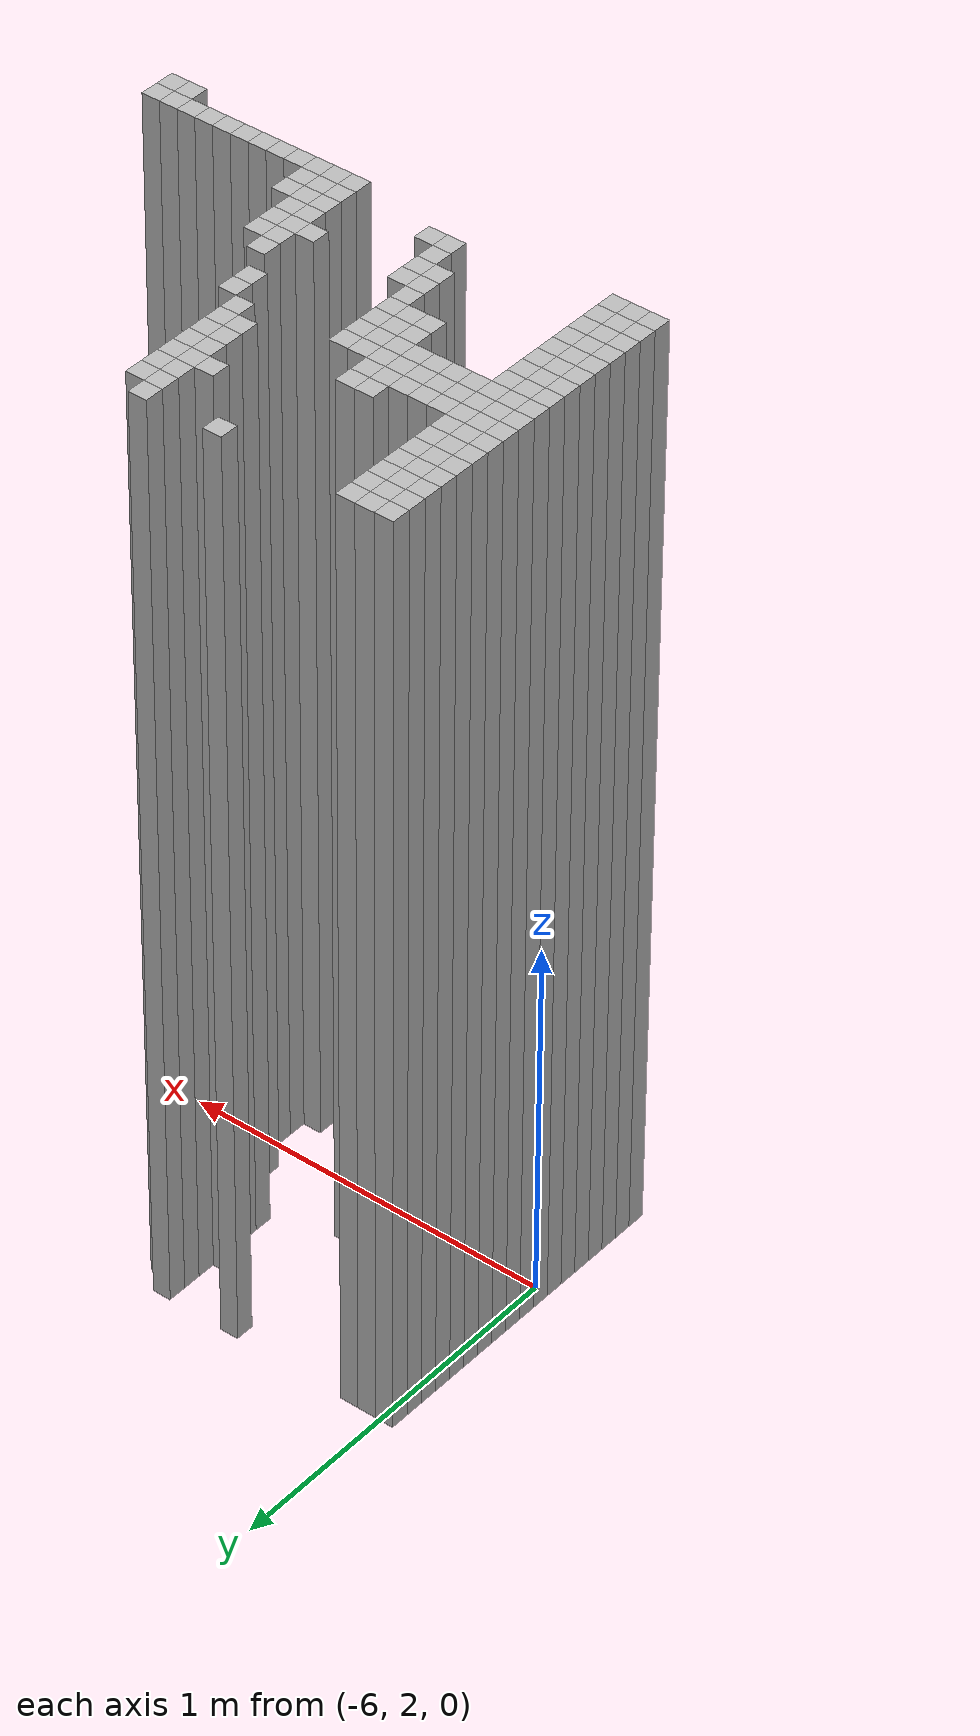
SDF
<sdf version="1.9">
 <world name="map_world">
  <model name="wall_103_103">
   <static>true</static>
   <pose>-6.011 2.530 1.250 0 0 0</pose>
   <link name="link">
    <collision name="collision"><geometry><box><size>0.050 0.050 2.500</size></box></geometry></collision>
    <visual name="visual"><geometry><box><size>0.050 0.050 2.500</size></box></geometry></visual>
   </link>
  </model>
  <model name="wall_104_103">
   <static>true</static>
   <pose>-5.961 2.530 1.250 0 0 0</pose>
   <link name="link">
    <collision name="collision"><geometry><box><size>0.050 0.050 2.500</size></box></geometry></collision>
    <visual name="visual"><geometry><box><size>0.050 0.050 2.500</size></box></geometry></visual>
   </link>
  </model>
  <model name="wall_105_103">
   <static>true</static>
   <pose>-5.911 2.530 1.250 0 0 0</pose>
   <link name="link">
    <collision name="collision"><geometry><box><size>0.050 0.050 2.500</size></box></geometry></collision>
    <visual name="visual"><geometry><box><size>0.050 0.050 2.500</size></box></geometry></visual>
   </link>
  </model>
  <model name="wall_112_103">
   <static>true</static>
   <pose>-5.561 2.530 1.250 0 0 0</pose>
   <link name="link">
    <collision name="collision"><geometry><box><size>0.050 0.050 2.500</size></box></geometry></collision>
    <visual name="visual"><geometry><box><size>0.050 0.050 2.500</size></box></geometry></visual>
   </link>
  </model>
  <model name="wall_116_103">
   <static>true</static>
   <pose>-5.361 2.530 1.250 0 0 0</pose>
   <link name="link">
    <collision name="collision"><geometry><box><size>0.050 0.050 2.500</size></box></geometry></collision>
    <visual name="visual"><geometry><box><size>0.050 0.050 2.500</size></box></geometry></visual>
   </link>
  </model>
  <model name="wall_103_104">
   <static>true</static>
   <pose>-6.011 2.480 1.250 0 0 0</pose>
   <link name="link">
    <collision name="collision"><geometry><box><size>0.050 0.050 2.500</size></box></geometry></collision>
    <visual name="visual"><geometry><box><size>0.050 0.050 2.500</size></box></geometry></visual>
   </link>
  </model>
  <model name="wall_104_104">
   <static>true</static>
   <pose>-5.961 2.480 1.250 0 0 0</pose>
   <link name="link">
    <collision name="collision"><geometry><box><size>0.050 0.050 2.500</size></box></geometry></collision>
    <visual name="visual"><geometry><box><size>0.050 0.050 2.500</size></box></geometry></visual>
   </link>
  </model>
  <model name="wall_105_104">
   <static>true</static>
   <pose>-5.911 2.480 1.250 0 0 0</pose>
   <link name="link">
    <collision name="collision"><geometry><box><size>0.050 0.050 2.500</size></box></geometry></collision>
    <visual name="visual"><geometry><box><size>0.050 0.050 2.500</size></box></geometry></visual>
   </link>
  </model>
  <model name="wall_116_104">
   <static>true</static>
   <pose>-5.361 2.480 1.250 0 0 0</pose>
   <link name="link">
    <collision name="collision"><geometry><box><size>0.050 0.050 2.500</size></box></geometry></collision>
    <visual name="visual"><geometry><box><size>0.050 0.050 2.500</size></box></geometry></visual>
   </link>
  </model>
  <model name="wall_117_104">
   <static>true</static>
   <pose>-5.311 2.480 1.250 0 0 0</pose>
   <link name="link">
    <collision name="collision"><geometry><box><size>0.050 0.050 2.500</size></box></geometry></collision>
    <visual name="visual"><geometry><box><size>0.050 0.050 2.500</size></box></geometry></visual>
   </link>
  </model>
  <model name="wall_103_105">
   <static>true</static>
   <pose>-6.011 2.430 1.250 0 0 0</pose>
   <link name="link">
    <collision name="collision"><geometry><box><size>0.050 0.050 2.500</size></box></geometry></collision>
    <visual name="visual"><geometry><box><size>0.050 0.050 2.500</size></box></geometry></visual>
   </link>
  </model>
  <model name="wall_104_105">
   <static>true</static>
   <pose>-5.961 2.430 1.250 0 0 0</pose>
   <link name="link">
    <collision name="collision"><geometry><box><size>0.050 0.050 2.500</size></box></geometry></collision>
    <visual name="visual"><geometry><box><size>0.050 0.050 2.500</size></box></geometry></visual>
   </link>
  </model>
  <model name="wall_105_105">
   <static>true</static>
   <pose>-5.911 2.430 1.250 0 0 0</pose>
   <link name="link">
    <collision name="collision"><geometry><box><size>0.050 0.050 2.500</size></box></geometry></collision>
    <visual name="visual"><geometry><box><size>0.050 0.050 2.500</size></box></geometry></visual>
   </link>
  </model>
  <model name="wall_116_105">
   <static>true</static>
   <pose>-5.361 2.430 1.250 0 0 0</pose>
   <link name="link">
    <collision name="collision"><geometry><box><size>0.050 0.050 2.500</size></box></geometry></collision>
    <visual name="visual"><geometry><box><size>0.050 0.050 2.500</size></box></geometry></visual>
   </link>
  </model>
  <model name="wall_117_105">
   <static>true</static>
   <pose>-5.311 2.430 1.250 0 0 0</pose>
   <link name="link">
    <collision name="collision"><geometry><box><size>0.050 0.050 2.500</size></box></geometry></collision>
    <visual name="visual"><geometry><box><size>0.050 0.050 2.500</size></box></geometry></visual>
   </link>
  </model>
  <model name="wall_103_106">
   <static>true</static>
   <pose>-6.011 2.380 1.250 0 0 0</pose>
   <link name="link">
    <collision name="collision"><geometry><box><size>0.050 0.050 2.500</size></box></geometry></collision>
    <visual name="visual"><geometry><box><size>0.050 0.050 2.500</size></box></geometry></visual>
   </link>
  </model>
  <model name="wall_104_106">
   <static>true</static>
   <pose>-5.961 2.380 1.250 0 0 0</pose>
   <link name="link">
    <collision name="collision"><geometry><box><size>0.050 0.050 2.500</size></box></geometry></collision>
    <visual name="visual"><geometry><box><size>0.050 0.050 2.500</size></box></geometry></visual>
   </link>
  </model>
  <model name="wall_105_106">
   <static>true</static>
   <pose>-5.911 2.380 1.250 0 0 0</pose>
   <link name="link">
    <collision name="collision"><geometry><box><size>0.050 0.050 2.500</size></box></geometry></collision>
    <visual name="visual"><geometry><box><size>0.050 0.050 2.500</size></box></geometry></visual>
   </link>
  </model>
  <model name="wall_115_106">
   <static>true</static>
   <pose>-5.411 2.380 1.250 0 0 0</pose>
   <link name="link">
    <collision name="collision"><geometry><box><size>0.050 0.050 2.500</size></box></geometry></collision>
    <visual name="visual"><geometry><box><size>0.050 0.050 2.500</size></box></geometry></visual>
   </link>
  </model>
  <model name="wall_116_106">
   <static>true</static>
   <pose>-5.361 2.380 1.250 0 0 0</pose>
   <link name="link">
    <collision name="collision"><geometry><box><size>0.050 0.050 2.500</size></box></geometry></collision>
    <visual name="visual"><geometry><box><size>0.050 0.050 2.500</size></box></geometry></visual>
   </link>
  </model>
  <model name="wall_117_106">
   <static>true</static>
   <pose>-5.311 2.380 1.250 0 0 0</pose>
   <link name="link">
    <collision name="collision"><geometry><box><size>0.050 0.050 2.500</size></box></geometry></collision>
    <visual name="visual"><geometry><box><size>0.050 0.050 2.500</size></box></geometry></visual>
   </link>
  </model>
  <model name="wall_103_107">
   <static>true</static>
   <pose>-6.011 2.330 1.250 0 0 0</pose>
   <link name="link">
    <collision name="collision"><geometry><box><size>0.050 0.050 2.500</size></box></geometry></collision>
    <visual name="visual"><geometry><box><size>0.050 0.050 2.500</size></box></geometry></visual>
   </link>
  </model>
  <model name="wall_104_107">
   <static>true</static>
   <pose>-5.961 2.330 1.250 0 0 0</pose>
   <link name="link">
    <collision name="collision"><geometry><box><size>0.050 0.050 2.500</size></box></geometry></collision>
    <visual name="visual"><geometry><box><size>0.050 0.050 2.500</size></box></geometry></visual>
   </link>
  </model>
  <model name="wall_105_107">
   <static>true</static>
   <pose>-5.911 2.330 1.250 0 0 0</pose>
   <link name="link">
    <collision name="collision"><geometry><box><size>0.050 0.050 2.500</size></box></geometry></collision>
    <visual name="visual"><geometry><box><size>0.050 0.050 2.500</size></box></geometry></visual>
   </link>
  </model>
  <model name="wall_116_107">
   <static>true</static>
   <pose>-5.361 2.330 1.250 0 0 0</pose>
   <link name="link">
    <collision name="collision"><geometry><box><size>0.050 0.050 2.500</size></box></geometry></collision>
    <visual name="visual"><geometry><box><size>0.050 0.050 2.500</size></box></geometry></visual>
   </link>
  </model>
  <model name="wall_117_107">
   <static>true</static>
   <pose>-5.311 2.330 1.250 0 0 0</pose>
   <link name="link">
    <collision name="collision"><geometry><box><size>0.050 0.050 2.500</size></box></geometry></collision>
    <visual name="visual"><geometry><box><size>0.050 0.050 2.500</size></box></geometry></visual>
   </link>
  </model>
  <model name="wall_103_108">
   <static>true</static>
   <pose>-6.011 2.280 1.250 0 0 0</pose>
   <link name="link">
    <collision name="collision"><geometry><box><size>0.050 0.050 2.500</size></box></geometry></collision>
    <visual name="visual"><geometry><box><size>0.050 0.050 2.500</size></box></geometry></visual>
   </link>
  </model>
  <model name="wall_104_108">
   <static>true</static>
   <pose>-5.961 2.280 1.250 0 0 0</pose>
   <link name="link">
    <collision name="collision"><geometry><box><size>0.050 0.050 2.500</size></box></geometry></collision>
    <visual name="visual"><geometry><box><size>0.050 0.050 2.500</size></box></geometry></visual>
   </link>
  </model>
  <model name="wall_105_108">
   <static>true</static>
   <pose>-5.911 2.280 1.250 0 0 0</pose>
   <link name="link">
    <collision name="collision"><geometry><box><size>0.050 0.050 2.500</size></box></geometry></collision>
    <visual name="visual"><geometry><box><size>0.050 0.050 2.500</size></box></geometry></visual>
   </link>
  </model>
  <model name="wall_116_108">
   <static>true</static>
   <pose>-5.361 2.280 1.250 0 0 0</pose>
   <link name="link">
    <collision name="collision"><geometry><box><size>0.050 0.050 2.500</size></box></geometry></collision>
    <visual name="visual"><geometry><box><size>0.050 0.050 2.500</size></box></geometry></visual>
   </link>
  </model>
  <model name="wall_117_108">
   <static>true</static>
   <pose>-5.311 2.280 1.250 0 0 0</pose>
   <link name="link">
    <collision name="collision"><geometry><box><size>0.050 0.050 2.500</size></box></geometry></collision>
    <visual name="visual"><geometry><box><size>0.050 0.050 2.500</size></box></geometry></visual>
   </link>
  </model>
  <model name="wall_103_109">
   <static>true</static>
   <pose>-6.011 2.230 1.250 0 0 0</pose>
   <link name="link">
    <collision name="collision"><geometry><box><size>0.050 0.050 2.500</size></box></geometry></collision>
    <visual name="visual"><geometry><box><size>0.050 0.050 2.500</size></box></geometry></visual>
   </link>
  </model>
  <model name="wall_104_109">
   <static>true</static>
   <pose>-5.961 2.230 1.250 0 0 0</pose>
   <link name="link">
    <collision name="collision"><geometry><box><size>0.050 0.050 2.500</size></box></geometry></collision>
    <visual name="visual"><geometry><box><size>0.050 0.050 2.500</size></box></geometry></visual>
   </link>
  </model>
  <model name="wall_105_109">
   <static>true</static>
   <pose>-5.911 2.230 1.250 0 0 0</pose>
   <link name="link">
    <collision name="collision"><geometry><box><size>0.050 0.050 2.500</size></box></geometry></collision>
    <visual name="visual"><geometry><box><size>0.050 0.050 2.500</size></box></geometry></visual>
   </link>
  </model>
  <model name="wall_109_109">
   <static>true</static>
   <pose>-5.711 2.230 1.250 0 0 0</pose>
   <link name="link">
    <collision name="collision"><geometry><box><size>0.050 0.050 2.500</size></box></geometry></collision>
    <visual name="visual"><geometry><box><size>0.050 0.050 2.500</size></box></geometry></visual>
   </link>
  </model>
  <model name="wall_110_109">
   <static>true</static>
   <pose>-5.661 2.230 1.250 0 0 0</pose>
   <link name="link">
    <collision name="collision"><geometry><box><size>0.050 0.050 2.500</size></box></geometry></collision>
    <visual name="visual"><geometry><box><size>0.050 0.050 2.500</size></box></geometry></visual>
   </link>
  </model>
  <model name="wall_116_109">
   <static>true</static>
   <pose>-5.361 2.230 1.250 0 0 0</pose>
   <link name="link">
    <collision name="collision"><geometry><box><size>0.050 0.050 2.500</size></box></geometry></collision>
    <visual name="visual"><geometry><box><size>0.050 0.050 2.500</size></box></geometry></visual>
   </link>
  </model>
  <model name="wall_117_109">
   <static>true</static>
   <pose>-5.311 2.230 1.250 0 0 0</pose>
   <link name="link">
    <collision name="collision"><geometry><box><size>0.050 0.050 2.500</size></box></geometry></collision>
    <visual name="visual"><geometry><box><size>0.050 0.050 2.500</size></box></geometry></visual>
   </link>
  </model>
  <model name="wall_103_110">
   <static>true</static>
   <pose>-6.011 2.180 1.250 0 0 0</pose>
   <link name="link">
    <collision name="collision"><geometry><box><size>0.050 0.050 2.500</size></box></geometry></collision>
    <visual name="visual"><geometry><box><size>0.050 0.050 2.500</size></box></geometry></visual>
   </link>
  </model>
  <model name="wall_104_110">
   <static>true</static>
   <pose>-5.961 2.180 1.250 0 0 0</pose>
   <link name="link">
    <collision name="collision"><geometry><box><size>0.050 0.050 2.500</size></box></geometry></collision>
    <visual name="visual"><geometry><box><size>0.050 0.050 2.500</size></box></geometry></visual>
   </link>
  </model>
  <model name="wall_105_110">
   <static>true</static>
   <pose>-5.911 2.180 1.250 0 0 0</pose>
   <link name="link">
    <collision name="collision"><geometry><box><size>0.050 0.050 2.500</size></box></geometry></collision>
    <visual name="visual"><geometry><box><size>0.050 0.050 2.500</size></box></geometry></visual>
   </link>
  </model>
  <model name="wall_106_110">
   <static>true</static>
   <pose>-5.861 2.180 1.250 0 0 0</pose>
   <link name="link">
    <collision name="collision"><geometry><box><size>0.050 0.050 2.500</size></box></geometry></collision>
    <visual name="visual"><geometry><box><size>0.050 0.050 2.500</size></box></geometry></visual>
   </link>
  </model>
  <model name="wall_107_110">
   <static>true</static>
   <pose>-5.811 2.180 1.250 0 0 0</pose>
   <link name="link">
    <collision name="collision"><geometry><box><size>0.050 0.050 2.500</size></box></geometry></collision>
    <visual name="visual"><geometry><box><size>0.050 0.050 2.500</size></box></geometry></visual>
   </link>
  </model>
  <model name="wall_108_110">
   <static>true</static>
   <pose>-5.761 2.180 1.250 0 0 0</pose>
   <link name="link">
    <collision name="collision"><geometry><box><size>0.050 0.050 2.500</size></box></geometry></collision>
    <visual name="visual"><geometry><box><size>0.050 0.050 2.500</size></box></geometry></visual>
   </link>
  </model>
  <model name="wall_109_110">
   <static>true</static>
   <pose>-5.711 2.180 1.250 0 0 0</pose>
   <link name="link">
    <collision name="collision"><geometry><box><size>0.050 0.050 2.500</size></box></geometry></collision>
    <visual name="visual"><geometry><box><size>0.050 0.050 2.500</size></box></geometry></visual>
   </link>
  </model>
  <model name="wall_110_110">
   <static>true</static>
   <pose>-5.661 2.180 1.250 0 0 0</pose>
   <link name="link">
    <collision name="collision"><geometry><box><size>0.050 0.050 2.500</size></box></geometry></collision>
    <visual name="visual"><geometry><box><size>0.050 0.050 2.500</size></box></geometry></visual>
   </link>
  </model>
  <model name="wall_117_110">
   <static>true</static>
   <pose>-5.311 2.180 1.250 0 0 0</pose>
   <link name="link">
    <collision name="collision"><geometry><box><size>0.050 0.050 2.500</size></box></geometry></collision>
    <visual name="visual"><geometry><box><size>0.050 0.050 2.500</size></box></geometry></visual>
   </link>
  </model>
  <model name="wall_103_111">
   <static>true</static>
   <pose>-6.011 2.130 1.250 0 0 0</pose>
   <link name="link">
    <collision name="collision"><geometry><box><size>0.050 0.050 2.500</size></box></geometry></collision>
    <visual name="visual"><geometry><box><size>0.050 0.050 2.500</size></box></geometry></visual>
   </link>
  </model>
  <model name="wall_104_111">
   <static>true</static>
   <pose>-5.961 2.130 1.250 0 0 0</pose>
   <link name="link">
    <collision name="collision"><geometry><box><size>0.050 0.050 2.500</size></box></geometry></collision>
    <visual name="visual"><geometry><box><size>0.050 0.050 2.500</size></box></geometry></visual>
   </link>
  </model>
  <model name="wall_105_111">
   <static>true</static>
   <pose>-5.911 2.130 1.250 0 0 0</pose>
   <link name="link">
    <collision name="collision"><geometry><box><size>0.050 0.050 2.500</size></box></geometry></collision>
    <visual name="visual"><geometry><box><size>0.050 0.050 2.500</size></box></geometry></visual>
   </link>
  </model>
  <model name="wall_106_111">
   <static>true</static>
   <pose>-5.861 2.130 1.250 0 0 0</pose>
   <link name="link">
    <collision name="collision"><geometry><box><size>0.050 0.050 2.500</size></box></geometry></collision>
    <visual name="visual"><geometry><box><size>0.050 0.050 2.500</size></box></geometry></visual>
   </link>
  </model>
  <model name="wall_107_111">
   <static>true</static>
   <pose>-5.811 2.130 1.250 0 0 0</pose>
   <link name="link">
    <collision name="collision"><geometry><box><size>0.050 0.050 2.500</size></box></geometry></collision>
    <visual name="visual"><geometry><box><size>0.050 0.050 2.500</size></box></geometry></visual>
   </link>
  </model>
  <model name="wall_108_111">
   <static>true</static>
   <pose>-5.761 2.130 1.250 0 0 0</pose>
   <link name="link">
    <collision name="collision"><geometry><box><size>0.050 0.050 2.500</size></box></geometry></collision>
    <visual name="visual"><geometry><box><size>0.050 0.050 2.500</size></box></geometry></visual>
   </link>
  </model>
  <model name="wall_109_111">
   <static>true</static>
   <pose>-5.711 2.130 1.250 0 0 0</pose>
   <link name="link">
    <collision name="collision"><geometry><box><size>0.050 0.050 2.500</size></box></geometry></collision>
    <visual name="visual"><geometry><box><size>0.050 0.050 2.500</size></box></geometry></visual>
   </link>
  </model>
  <model name="wall_110_111">
   <static>true</static>
   <pose>-5.661 2.130 1.250 0 0 0</pose>
   <link name="link">
    <collision name="collision"><geometry><box><size>0.050 0.050 2.500</size></box></geometry></collision>
    <visual name="visual"><geometry><box><size>0.050 0.050 2.500</size></box></geometry></visual>
   </link>
  </model>
  <model name="wall_111_111">
   <static>true</static>
   <pose>-5.611 2.130 1.250 0 0 0</pose>
   <link name="link">
    <collision name="collision"><geometry><box><size>0.050 0.050 2.500</size></box></geometry></collision>
    <visual name="visual"><geometry><box><size>0.050 0.050 2.500</size></box></geometry></visual>
   </link>
  </model>
  <model name="wall_112_111">
   <static>true</static>
   <pose>-5.561 2.130 1.250 0 0 0</pose>
   <link name="link">
    <collision name="collision"><geometry><box><size>0.050 0.050 2.500</size></box></geometry></collision>
    <visual name="visual"><geometry><box><size>0.050 0.050 2.500</size></box></geometry></visual>
   </link>
  </model>
  <model name="wall_118_111">
   <static>true</static>
   <pose>-5.261 2.130 1.250 0 0 0</pose>
   <link name="link">
    <collision name="collision"><geometry><box><size>0.050 0.050 2.500</size></box></geometry></collision>
    <visual name="visual"><geometry><box><size>0.050 0.050 2.500</size></box></geometry></visual>
   </link>
  </model>
  <model name="wall_103_112">
   <static>true</static>
   <pose>-6.011 2.080 1.250 0 0 0</pose>
   <link name="link">
    <collision name="collision"><geometry><box><size>0.050 0.050 2.500</size></box></geometry></collision>
    <visual name="visual"><geometry><box><size>0.050 0.050 2.500</size></box></geometry></visual>
   </link>
  </model>
  <model name="wall_104_112">
   <static>true</static>
   <pose>-5.961 2.080 1.250 0 0 0</pose>
   <link name="link">
    <collision name="collision"><geometry><box><size>0.050 0.050 2.500</size></box></geometry></collision>
    <visual name="visual"><geometry><box><size>0.050 0.050 2.500</size></box></geometry></visual>
   </link>
  </model>
  <model name="wall_105_112">
   <static>true</static>
   <pose>-5.911 2.080 1.250 0 0 0</pose>
   <link name="link">
    <collision name="collision"><geometry><box><size>0.050 0.050 2.500</size></box></geometry></collision>
    <visual name="visual"><geometry><box><size>0.050 0.050 2.500</size></box></geometry></visual>
   </link>
  </model>
  <model name="wall_106_112">
   <static>true</static>
   <pose>-5.861 2.080 1.250 0 0 0</pose>
   <link name="link">
    <collision name="collision"><geometry><box><size>0.050 0.050 2.500</size></box></geometry></collision>
    <visual name="visual"><geometry><box><size>0.050 0.050 2.500</size></box></geometry></visual>
   </link>
  </model>
  <model name="wall_107_112">
   <static>true</static>
   <pose>-5.811 2.080 1.250 0 0 0</pose>
   <link name="link">
    <collision name="collision"><geometry><box><size>0.050 0.050 2.500</size></box></geometry></collision>
    <visual name="visual"><geometry><box><size>0.050 0.050 2.500</size></box></geometry></visual>
   </link>
  </model>
  <model name="wall_108_112">
   <static>true</static>
   <pose>-5.761 2.080 1.250 0 0 0</pose>
   <link name="link">
    <collision name="collision"><geometry><box><size>0.050 0.050 2.500</size></box></geometry></collision>
    <visual name="visual"><geometry><box><size>0.050 0.050 2.500</size></box></geometry></visual>
   </link>
  </model>
  <model name="wall_109_112">
   <static>true</static>
   <pose>-5.711 2.080 1.250 0 0 0</pose>
   <link name="link">
    <collision name="collision"><geometry><box><size>0.050 0.050 2.500</size></box></geometry></collision>
    <visual name="visual"><geometry><box><size>0.050 0.050 2.500</size></box></geometry></visual>
   </link>
  </model>
  <model name="wall_110_112">
   <static>true</static>
   <pose>-5.661 2.080 1.250 0 0 0</pose>
   <link name="link">
    <collision name="collision"><geometry><box><size>0.050 0.050 2.500</size></box></geometry></collision>
    <visual name="visual"><geometry><box><size>0.050 0.050 2.500</size></box></geometry></visual>
   </link>
  </model>
  <model name="wall_111_112">
   <static>true</static>
   <pose>-5.611 2.080 1.250 0 0 0</pose>
   <link name="link">
    <collision name="collision"><geometry><box><size>0.050 0.050 2.500</size></box></geometry></collision>
    <visual name="visual"><geometry><box><size>0.050 0.050 2.500</size></box></geometry></visual>
   </link>
  </model>
  <model name="wall_112_112">
   <static>true</static>
   <pose>-5.561 2.080 1.250 0 0 0</pose>
   <link name="link">
    <collision name="collision"><geometry><box><size>0.050 0.050 2.500</size></box></geometry></collision>
    <visual name="visual"><geometry><box><size>0.050 0.050 2.500</size></box></geometry></visual>
   </link>
  </model>
  <model name="wall_118_112">
   <static>true</static>
   <pose>-5.261 2.080 1.250 0 0 0</pose>
   <link name="link">
    <collision name="collision"><geometry><box><size>0.050 0.050 2.500</size></box></geometry></collision>
    <visual name="visual"><geometry><box><size>0.050 0.050 2.500</size></box></geometry></visual>
   </link>
  </model>
  <model name="wall_103_113">
   <static>true</static>
   <pose>-6.011 2.030 1.250 0 0 0</pose>
   <link name="link">
    <collision name="collision"><geometry><box><size>0.050 0.050 2.500</size></box></geometry></collision>
    <visual name="visual"><geometry><box><size>0.050 0.050 2.500</size></box></geometry></visual>
   </link>
  </model>
  <model name="wall_104_113">
   <static>true</static>
   <pose>-5.961 2.030 1.250 0 0 0</pose>
   <link name="link">
    <collision name="collision"><geometry><box><size>0.050 0.050 2.500</size></box></geometry></collision>
    <visual name="visual"><geometry><box><size>0.050 0.050 2.500</size></box></geometry></visual>
   </link>
  </model>
  <model name="wall_105_113">
   <static>true</static>
   <pose>-5.911 2.030 1.250 0 0 0</pose>
   <link name="link">
    <collision name="collision"><geometry><box><size>0.050 0.050 2.500</size></box></geometry></collision>
    <visual name="visual"><geometry><box><size>0.050 0.050 2.500</size></box></geometry></visual>
   </link>
  </model>
  <model name="wall_110_113">
   <static>true</static>
   <pose>-5.661 2.030 1.250 0 0 0</pose>
   <link name="link">
    <collision name="collision"><geometry><box><size>0.050 0.050 2.500</size></box></geometry></collision>
    <visual name="visual"><geometry><box><size>0.050 0.050 2.500</size></box></geometry></visual>
   </link>
  </model>
  <model name="wall_111_113">
   <static>true</static>
   <pose>-5.611 2.030 1.250 0 0 0</pose>
   <link name="link">
    <collision name="collision"><geometry><box><size>0.050 0.050 2.500</size></box></geometry></collision>
    <visual name="visual"><geometry><box><size>0.050 0.050 2.500</size></box></geometry></visual>
   </link>
  </model>
  <model name="wall_112_113">
   <static>true</static>
   <pose>-5.561 2.030 1.250 0 0 0</pose>
   <link name="link">
    <collision name="collision"><geometry><box><size>0.050 0.050 2.500</size></box></geometry></collision>
    <visual name="visual"><geometry><box><size>0.050 0.050 2.500</size></box></geometry></visual>
   </link>
  </model>
  <model name="wall_103_114">
   <static>true</static>
   <pose>-6.011 1.980 1.250 0 0 0</pose>
   <link name="link">
    <collision name="collision"><geometry><box><size>0.050 0.050 2.500</size></box></geometry></collision>
    <visual name="visual"><geometry><box><size>0.050 0.050 2.500</size></box></geometry></visual>
   </link>
  </model>
  <model name="wall_104_114">
   <static>true</static>
   <pose>-5.961 1.980 1.250 0 0 0</pose>
   <link name="link">
    <collision name="collision"><geometry><box><size>0.050 0.050 2.500</size></box></geometry></collision>
    <visual name="visual"><geometry><box><size>0.050 0.050 2.500</size></box></geometry></visual>
   </link>
  </model>
  <model name="wall_105_114">
   <static>true</static>
   <pose>-5.911 1.980 1.250 0 0 0</pose>
   <link name="link">
    <collision name="collision"><geometry><box><size>0.050 0.050 2.500</size></box></geometry></collision>
    <visual name="visual"><geometry><box><size>0.050 0.050 2.500</size></box></geometry></visual>
   </link>
  </model>
  <model name="wall_110_114">
   <static>true</static>
   <pose>-5.661 1.980 1.250 0 0 0</pose>
   <link name="link">
    <collision name="collision"><geometry><box><size>0.050 0.050 2.500</size></box></geometry></collision>
    <visual name="visual"><geometry><box><size>0.050 0.050 2.500</size></box></geometry></visual>
   </link>
  </model>
  <model name="wall_111_114">
   <static>true</static>
   <pose>-5.611 1.980 1.250 0 0 0</pose>
   <link name="link">
    <collision name="collision"><geometry><box><size>0.050 0.050 2.500</size></box></geometry></collision>
    <visual name="visual"><geometry><box><size>0.050 0.050 2.500</size></box></geometry></visual>
   </link>
  </model>
  <model name="wall_112_114">
   <static>true</static>
   <pose>-5.561 1.980 1.250 0 0 0</pose>
   <link name="link">
    <collision name="collision"><geometry><box><size>0.050 0.050 2.500</size></box></geometry></collision>
    <visual name="visual"><geometry><box><size>0.050 0.050 2.500</size></box></geometry></visual>
   </link>
  </model>
  <model name="wall_119_114">
   <static>true</static>
   <pose>-5.211 1.980 1.250 0 0 0</pose>
   <link name="link">
    <collision name="collision"><geometry><box><size>0.050 0.050 2.500</size></box></geometry></collision>
    <visual name="visual"><geometry><box><size>0.050 0.050 2.500</size></box></geometry></visual>
   </link>
  </model>
  <model name="wall_103_115">
   <static>true</static>
   <pose>-6.011 1.930 1.250 0 0 0</pose>
   <link name="link">
    <collision name="collision"><geometry><box><size>0.050 0.050 2.500</size></box></geometry></collision>
    <visual name="visual"><geometry><box><size>0.050 0.050 2.500</size></box></geometry></visual>
   </link>
  </model>
  <model name="wall_104_115">
   <static>true</static>
   <pose>-5.961 1.930 1.250 0 0 0</pose>
   <link name="link">
    <collision name="collision"><geometry><box><size>0.050 0.050 2.500</size></box></geometry></collision>
    <visual name="visual"><geometry><box><size>0.050 0.050 2.500</size></box></geometry></visual>
   </link>
  </model>
  <model name="wall_105_115">
   <static>true</static>
   <pose>-5.911 1.930 1.250 0 0 0</pose>
   <link name="link">
    <collision name="collision"><geometry><box><size>0.050 0.050 2.500</size></box></geometry></collision>
    <visual name="visual"><geometry><box><size>0.050 0.050 2.500</size></box></geometry></visual>
   </link>
  </model>
  <model name="wall_112_115">
   <static>true</static>
   <pose>-5.561 1.930 1.250 0 0 0</pose>
   <link name="link">
    <collision name="collision"><geometry><box><size>0.050 0.050 2.500</size></box></geometry></collision>
    <visual name="visual"><geometry><box><size>0.050 0.050 2.500</size></box></geometry></visual>
   </link>
  </model>
  <model name="wall_119_115">
   <static>true</static>
   <pose>-5.211 1.930 1.250 0 0 0</pose>
   <link name="link">
    <collision name="collision"><geometry><box><size>0.050 0.050 2.500</size></box></geometry></collision>
    <visual name="visual"><geometry><box><size>0.050 0.050 2.500</size></box></geometry></visual>
   </link>
  </model>
  <model name="wall_120_115">
   <static>true</static>
   <pose>-5.161 1.930 1.250 0 0 0</pose>
   <link name="link">
    <collision name="collision"><geometry><box><size>0.050 0.050 2.500</size></box></geometry></collision>
    <visual name="visual"><geometry><box><size>0.050 0.050 2.500</size></box></geometry></visual>
   </link>
  </model>
  <model name="wall_103_116">
   <static>true</static>
   <pose>-6.011 1.880 1.250 0 0 0</pose>
   <link name="link">
    <collision name="collision"><geometry><box><size>0.050 0.050 2.500</size></box></geometry></collision>
    <visual name="visual"><geometry><box><size>0.050 0.050 2.500</size></box></geometry></visual>
   </link>
  </model>
  <model name="wall_104_116">
   <static>true</static>
   <pose>-5.961 1.880 1.250 0 0 0</pose>
   <link name="link">
    <collision name="collision"><geometry><box><size>0.050 0.050 2.500</size></box></geometry></collision>
    <visual name="visual"><geometry><box><size>0.050 0.050 2.500</size></box></geometry></visual>
   </link>
  </model>
  <model name="wall_105_116">
   <static>true</static>
   <pose>-5.911 1.880 1.250 0 0 0</pose>
   <link name="link">
    <collision name="collision"><geometry><box><size>0.050 0.050 2.500</size></box></geometry></collision>
    <visual name="visual"><geometry><box><size>0.050 0.050 2.500</size></box></geometry></visual>
   </link>
  </model>
  <model name="wall_112_116">
   <static>true</static>
   <pose>-5.561 1.880 1.250 0 0 0</pose>
   <link name="link">
    <collision name="collision"><geometry><box><size>0.050 0.050 2.500</size></box></geometry></collision>
    <visual name="visual"><geometry><box><size>0.050 0.050 2.500</size></box></geometry></visual>
   </link>
  </model>
  <model name="wall_113_116">
   <static>true</static>
   <pose>-5.511 1.880 1.250 0 0 0</pose>
   <link name="link">
    <collision name="collision"><geometry><box><size>0.050 0.050 2.500</size></box></geometry></collision>
    <visual name="visual"><geometry><box><size>0.050 0.050 2.500</size></box></geometry></visual>
   </link>
  </model>
  <model name="wall_118_116">
   <static>true</static>
   <pose>-5.261 1.880 1.250 0 0 0</pose>
   <link name="link">
    <collision name="collision"><geometry><box><size>0.050 0.050 2.500</size></box></geometry></collision>
    <visual name="visual"><geometry><box><size>0.050 0.050 2.500</size></box></geometry></visual>
   </link>
  </model>
  <model name="wall_119_116">
   <static>true</static>
   <pose>-5.211 1.880 1.250 0 0 0</pose>
   <link name="link">
    <collision name="collision"><geometry><box><size>0.050 0.050 2.500</size></box></geometry></collision>
    <visual name="visual"><geometry><box><size>0.050 0.050 2.500</size></box></geometry></visual>
   </link>
  </model>
  <model name="wall_120_116">
   <static>true</static>
   <pose>-5.161 1.880 1.250 0 0 0</pose>
   <link name="link">
    <collision name="collision"><geometry><box><size>0.050 0.050 2.500</size></box></geometry></collision>
    <visual name="visual"><geometry><box><size>0.050 0.050 2.500</size></box></geometry></visual>
   </link>
  </model>
  <model name="wall_103_117">
   <static>true</static>
   <pose>-6.011 1.830 1.250 0 0 0</pose>
   <link name="link">
    <collision name="collision"><geometry><box><size>0.050 0.050 2.500</size></box></geometry></collision>
    <visual name="visual"><geometry><box><size>0.050 0.050 2.500</size></box></geometry></visual>
   </link>
  </model>
  <model name="wall_104_117">
   <static>true</static>
   <pose>-5.961 1.830 1.250 0 0 0</pose>
   <link name="link">
    <collision name="collision"><geometry><box><size>0.050 0.050 2.500</size></box></geometry></collision>
    <visual name="visual"><geometry><box><size>0.050 0.050 2.500</size></box></geometry></visual>
   </link>
  </model>
  <model name="wall_105_117">
   <static>true</static>
   <pose>-5.911 1.830 1.250 0 0 0</pose>
   <link name="link">
    <collision name="collision"><geometry><box><size>0.050 0.050 2.500</size></box></geometry></collision>
    <visual name="visual"><geometry><box><size>0.050 0.050 2.500</size></box></geometry></visual>
   </link>
  </model>
  <model name="wall_112_117">
   <static>true</static>
   <pose>-5.561 1.830 1.250 0 0 0</pose>
   <link name="link">
    <collision name="collision"><geometry><box><size>0.050 0.050 2.500</size></box></geometry></collision>
    <visual name="visual"><geometry><box><size>0.050 0.050 2.500</size></box></geometry></visual>
   </link>
  </model>
  <model name="wall_113_117">
   <static>true</static>
   <pose>-5.511 1.830 1.250 0 0 0</pose>
   <link name="link">
    <collision name="collision"><geometry><box><size>0.050 0.050 2.500</size></box></geometry></collision>
    <visual name="visual"><geometry><box><size>0.050 0.050 2.500</size></box></geometry></visual>
   </link>
  </model>
  <model name="wall_119_117">
   <static>true</static>
   <pose>-5.211 1.830 1.250 0 0 0</pose>
   <link name="link">
    <collision name="collision"><geometry><box><size>0.050 0.050 2.500</size></box></geometry></collision>
    <visual name="visual"><geometry><box><size>0.050 0.050 2.500</size></box></geometry></visual>
   </link>
  </model>
  <model name="wall_120_117">
   <static>true</static>
   <pose>-5.161 1.830 1.250 0 0 0</pose>
   <link name="link">
    <collision name="collision"><geometry><box><size>0.050 0.050 2.500</size></box></geometry></collision>
    <visual name="visual"><geometry><box><size>0.050 0.050 2.500</size></box></geometry></visual>
   </link>
  </model>
  <model name="wall_103_118">
   <static>true</static>
   <pose>-6.011 1.780 1.250 0 0 0</pose>
   <link name="link">
    <collision name="collision"><geometry><box><size>0.050 0.050 2.500</size></box></geometry></collision>
    <visual name="visual"><geometry><box><size>0.050 0.050 2.500</size></box></geometry></visual>
   </link>
  </model>
  <model name="wall_104_118">
   <static>true</static>
   <pose>-5.961 1.780 1.250 0 0 0</pose>
   <link name="link">
    <collision name="collision"><geometry><box><size>0.050 0.050 2.500</size></box></geometry></collision>
    <visual name="visual"><geometry><box><size>0.050 0.050 2.500</size></box></geometry></visual>
   </link>
  </model>
  <model name="wall_105_118">
   <static>true</static>
   <pose>-5.911 1.780 1.250 0 0 0</pose>
   <link name="link">
    <collision name="collision"><geometry><box><size>0.050 0.050 2.500</size></box></geometry></collision>
    <visual name="visual"><geometry><box><size>0.050 0.050 2.500</size></box></geometry></visual>
   </link>
  </model>
  <model name="wall_113_118">
   <static>true</static>
   <pose>-5.511 1.780 1.250 0 0 0</pose>
   <link name="link">
    <collision name="collision"><geometry><box><size>0.050 0.050 2.500</size></box></geometry></collision>
    <visual name="visual"><geometry><box><size>0.050 0.050 2.500</size></box></geometry></visual>
   </link>
  </model>
  <model name="wall_119_118">
   <static>true</static>
   <pose>-5.211 1.780 1.250 0 0 0</pose>
   <link name="link">
    <collision name="collision"><geometry><box><size>0.050 0.050 2.500</size></box></geometry></collision>
    <visual name="visual"><geometry><box><size>0.050 0.050 2.500</size></box></geometry></visual>
   </link>
  </model>
  <model name="wall_120_118">
   <static>true</static>
   <pose>-5.161 1.780 1.250 0 0 0</pose>
   <link name="link">
    <collision name="collision"><geometry><box><size>0.050 0.050 2.500</size></box></geometry></collision>
    <visual name="visual"><geometry><box><size>0.050 0.050 2.500</size></box></geometry></visual>
   </link>
  </model>
  <model name="wall_121_118">
   <static>true</static>
   <pose>-5.111 1.780 1.250 0 0 0</pose>
   <link name="link">
    <collision name="collision"><geometry><box><size>0.050 0.050 2.500</size></box></geometry></collision>
    <visual name="visual"><geometry><box><size>0.050 0.050 2.500</size></box></geometry></visual>
   </link>
  </model>
  <model name="wall_103_119">
   <static>true</static>
   <pose>-6.011 1.730 1.250 0 0 0</pose>
   <link name="link">
    <collision name="collision"><geometry><box><size>0.050 0.050 2.500</size></box></geometry></collision>
    <visual name="visual"><geometry><box><size>0.050 0.050 2.500</size></box></geometry></visual>
   </link>
  </model>
  <model name="wall_104_119">
   <static>true</static>
   <pose>-5.961 1.730 1.250 0 0 0</pose>
   <link name="link">
    <collision name="collision"><geometry><box><size>0.050 0.050 2.500</size></box></geometry></collision>
    <visual name="visual"><geometry><box><size>0.050 0.050 2.500</size></box></geometry></visual>
   </link>
  </model>
  <model name="wall_105_119">
   <static>true</static>
   <pose>-5.911 1.730 1.250 0 0 0</pose>
   <link name="link">
    <collision name="collision"><geometry><box><size>0.050 0.050 2.500</size></box></geometry></collision>
    <visual name="visual"><geometry><box><size>0.050 0.050 2.500</size></box></geometry></visual>
   </link>
  </model>
  <model name="wall_113_119">
   <static>true</static>
   <pose>-5.511 1.730 1.250 0 0 0</pose>
   <link name="link">
    <collision name="collision"><geometry><box><size>0.050 0.050 2.500</size></box></geometry></collision>
    <visual name="visual"><geometry><box><size>0.050 0.050 2.500</size></box></geometry></visual>
   </link>
  </model>
  <model name="wall_114_119">
   <static>true</static>
   <pose>-5.461 1.730 1.250 0 0 0</pose>
   <link name="link">
    <collision name="collision"><geometry><box><size>0.050 0.050 2.500</size></box></geometry></collision>
    <visual name="visual"><geometry><box><size>0.050 0.050 2.500</size></box></geometry></visual>
   </link>
  </model>
  <model name="wall_119_119">
   <static>true</static>
   <pose>-5.211 1.730 1.250 0 0 0</pose>
   <link name="link">
    <collision name="collision"><geometry><box><size>0.050 0.050 2.500</size></box></geometry></collision>
    <visual name="visual"><geometry><box><size>0.050 0.050 2.500</size></box></geometry></visual>
   </link>
  </model>
  <model name="wall_120_119">
   <static>true</static>
   <pose>-5.161 1.730 1.250 0 0 0</pose>
   <link name="link">
    <collision name="collision"><geometry><box><size>0.050 0.050 2.500</size></box></geometry></collision>
    <visual name="visual"><geometry><box><size>0.050 0.050 2.500</size></box></geometry></visual>
   </link>
  </model>
  <model name="wall_121_119">
   <static>true</static>
   <pose>-5.111 1.730 1.250 0 0 0</pose>
   <link name="link">
    <collision name="collision"><geometry><box><size>0.050 0.050 2.500</size></box></geometry></collision>
    <visual name="visual"><geometry><box><size>0.050 0.050 2.500</size></box></geometry></visual>
   </link>
  </model>
  <model name="wall_103_120">
   <static>true</static>
   <pose>-6.011 1.680 1.250 0 0 0</pose>
   <link name="link">
    <collision name="collision"><geometry><box><size>0.050 0.050 2.500</size></box></geometry></collision>
    <visual name="visual"><geometry><box><size>0.050 0.050 2.500</size></box></geometry></visual>
   </link>
  </model>
  <model name="wall_104_120">
   <static>true</static>
   <pose>-5.961 1.680 1.250 0 0 0</pose>
   <link name="link">
    <collision name="collision"><geometry><box><size>0.050 0.050 2.500</size></box></geometry></collision>
    <visual name="visual"><geometry><box><size>0.050 0.050 2.500</size></box></geometry></visual>
   </link>
  </model>
  <model name="wall_105_120">
   <static>true</static>
   <pose>-5.911 1.680 1.250 0 0 0</pose>
   <link name="link">
    <collision name="collision"><geometry><box><size>0.050 0.050 2.500</size></box></geometry></collision>
    <visual name="visual"><geometry><box><size>0.050 0.050 2.500</size></box></geometry></visual>
   </link>
  </model>
  <model name="wall_119_120">
   <static>true</static>
   <pose>-5.211 1.680 1.250 0 0 0</pose>
   <link name="link">
    <collision name="collision"><geometry><box><size>0.050 0.050 2.500</size></box></geometry></collision>
    <visual name="visual"><geometry><box><size>0.050 0.050 2.500</size></box></geometry></visual>
   </link>
  </model>
  <model name="wall_120_120">
   <static>true</static>
   <pose>-5.161 1.680 1.250 0 0 0</pose>
   <link name="link">
    <collision name="collision"><geometry><box><size>0.050 0.050 2.500</size></box></geometry></collision>
    <visual name="visual"><geometry><box><size>0.050 0.050 2.500</size></box></geometry></visual>
   </link>
  </model>
  <model name="wall_121_120">
   <static>true</static>
   <pose>-5.111 1.680 1.250 0 0 0</pose>
   <link name="link">
    <collision name="collision"><geometry><box><size>0.050 0.050 2.500</size></box></geometry></collision>
    <visual name="visual"><geometry><box><size>0.050 0.050 2.500</size></box></geometry></visual>
   </link>
  </model>
  <model name="wall_122_120">
   <static>true</static>
   <pose>-5.061 1.680 1.250 0 0 0</pose>
   <link name="link">
    <collision name="collision"><geometry><box><size>0.050 0.050 2.500</size></box></geometry></collision>
    <visual name="visual"><geometry><box><size>0.050 0.050 2.500</size></box></geometry></visual>
   </link>
  </model>
  <model name="wall_123_120">
   <static>true</static>
   <pose>-5.011 1.680 1.250 0 0 0</pose>
   <link name="link">
    <collision name="collision"><geometry><box><size>0.050 0.050 2.500</size></box></geometry></collision>
    <visual name="visual"><geometry><box><size>0.050 0.050 2.500</size></box></geometry></visual>
   </link>
  </model>
  <model name="wall_124_120">
   <static>true</static>
   <pose>-4.961 1.680 1.250 0 0 0</pose>
   <link name="link">
    <collision name="collision"><geometry><box><size>0.050 0.050 2.500</size></box></geometry></collision>
    <visual name="visual"><geometry><box><size>0.050 0.050 2.500</size></box></geometry></visual>
   </link>
  </model>
  <model name="wall_125_120">
   <static>true</static>
   <pose>-4.911 1.680 1.250 0 0 0</pose>
   <link name="link">
    <collision name="collision"><geometry><box><size>0.050 0.050 2.500</size></box></geometry></collision>
    <visual name="visual"><geometry><box><size>0.050 0.050 2.500</size></box></geometry></visual>
   </link>
  </model>
  <model name="wall_126_120">
   <static>true</static>
   <pose>-4.861 1.680 1.250 0 0 0</pose>
   <link name="link">
    <collision name="collision"><geometry><box><size>0.050 0.050 2.500</size></box></geometry></collision>
    <visual name="visual"><geometry><box><size>0.050 0.050 2.500</size></box></geometry></visual>
   </link>
  </model>
  <model name="wall_127_120">
   <static>true</static>
   <pose>-4.811 1.680 1.250 0 0 0</pose>
   <link name="link">
    <collision name="collision"><geometry><box><size>0.050 0.050 2.500</size></box></geometry></collision>
    <visual name="visual"><geometry><box><size>0.050 0.050 2.500</size></box></geometry></visual>
   </link>
  </model>
  <model name="wall_128_120">
   <static>true</static>
   <pose>-4.761 1.680 1.250 0 0 0</pose>
   <link name="link">
    <collision name="collision"><geometry><box><size>0.050 0.050 2.500</size></box></geometry></collision>
    <visual name="visual"><geometry><box><size>0.050 0.050 2.500</size></box></geometry></visual>
   </link>
  </model>
  <model name="wall_129_120">
   <static>true</static>
   <pose>-4.711 1.680 1.250 0 0 0</pose>
   <link name="link">
    <collision name="collision"><geometry><box><size>0.050 0.050 2.500</size></box></geometry></collision>
    <visual name="visual"><geometry><box><size>0.050 0.050 2.500</size></box></geometry></visual>
   </link>
  </model>
  <model name="wall_130_120">
   <static>true</static>
   <pose>-4.661 1.680 1.250 0 0 0</pose>
   <link name="link">
    <collision name="collision"><geometry><box><size>0.050 0.050 2.500</size></box></geometry></collision>
    <visual name="visual"><geometry><box><size>0.050 0.050 2.500</size></box></geometry></visual>
   </link>
  </model>
  <model name="wall_129_121">
   <static>true</static>
   <pose>-4.711 1.630 1.250 0 0 0</pose>
   <link name="link">
    <collision name="collision"><geometry><box><size>0.050 0.050 2.500</size></box></geometry></collision>
    <visual name="visual"><geometry><box><size>0.050 0.050 2.500</size></box></geometry></visual>
   </link>
  </model>
  <model name="wall_130_121">
   <static>true</static>
   <pose>-4.661 1.630 1.250 0 0 0</pose>
   <link name="link">
    <collision name="collision"><geometry><box><size>0.050 0.050 2.500</size></box></geometry></collision>
    <visual name="visual"><geometry><box><size>0.050 0.050 2.500</size></box></geometry></visual>
   </link>
  </model>
 </world>
</sdf>
